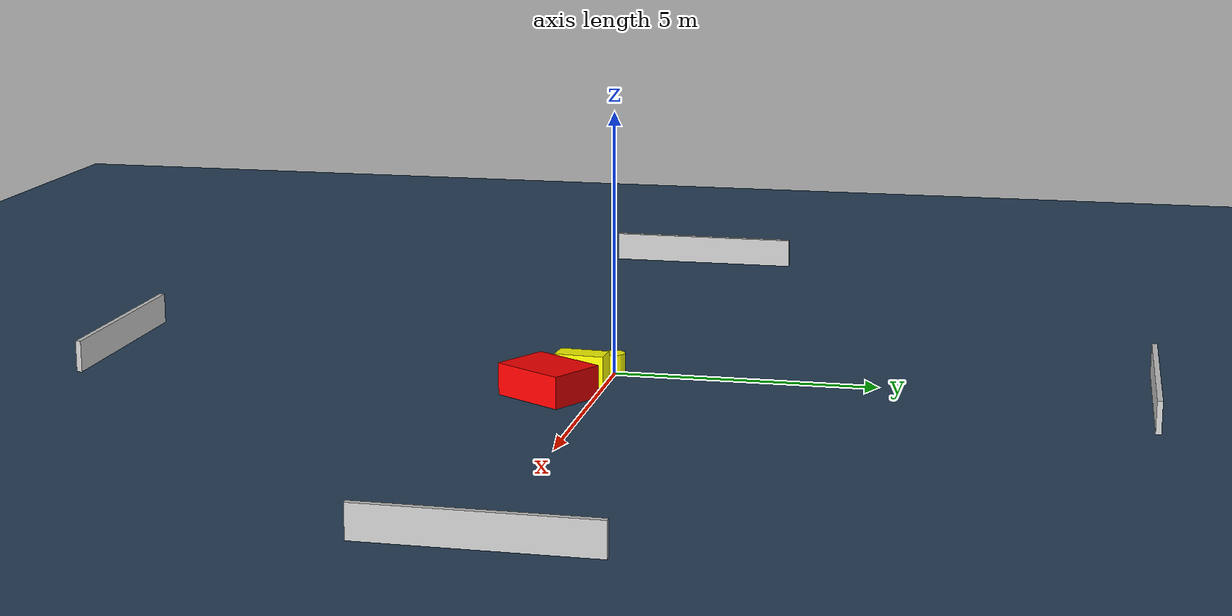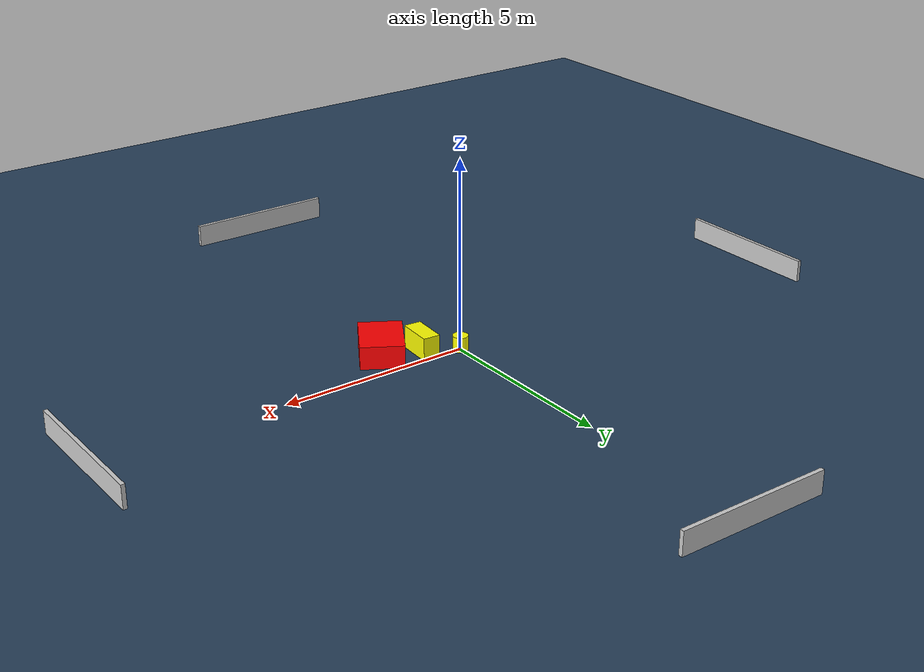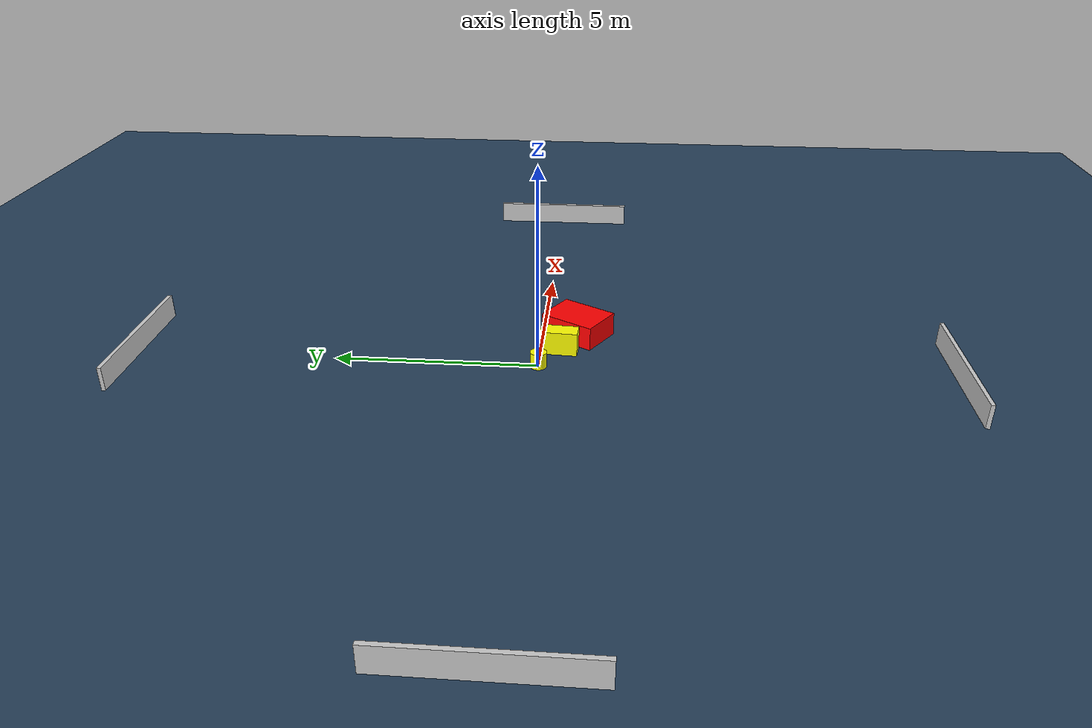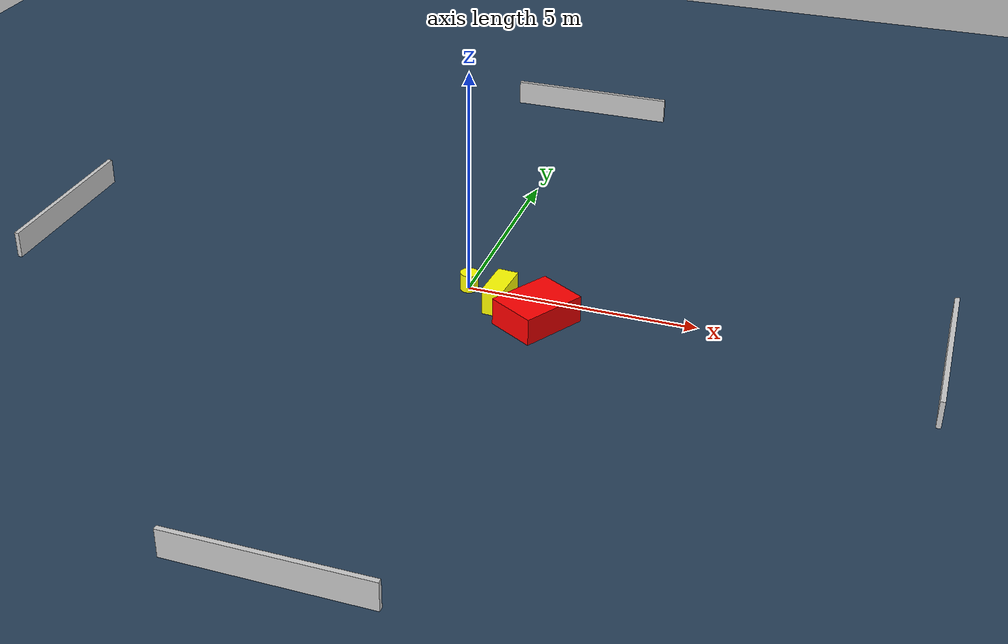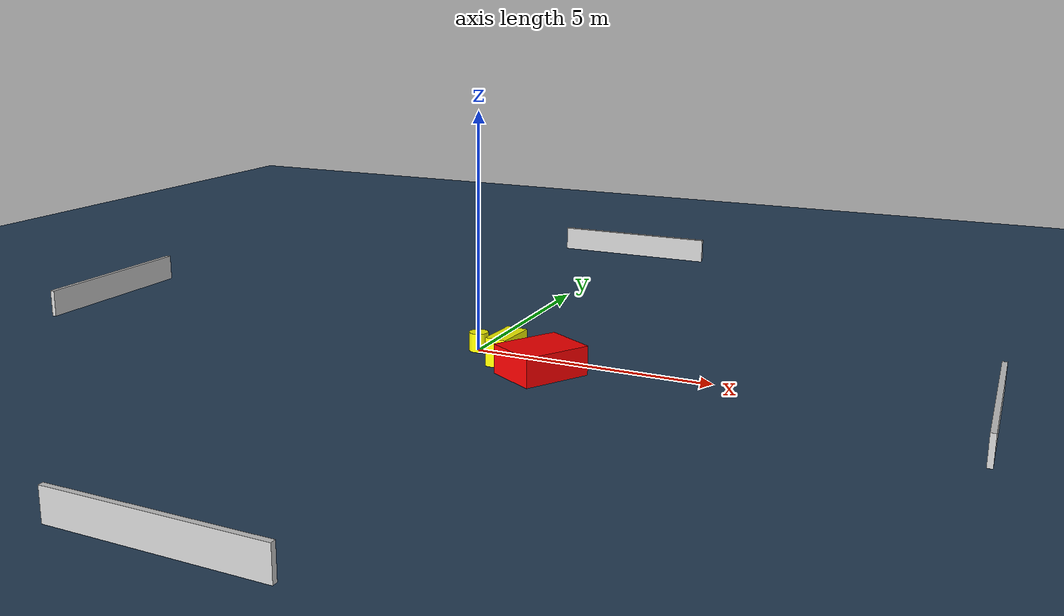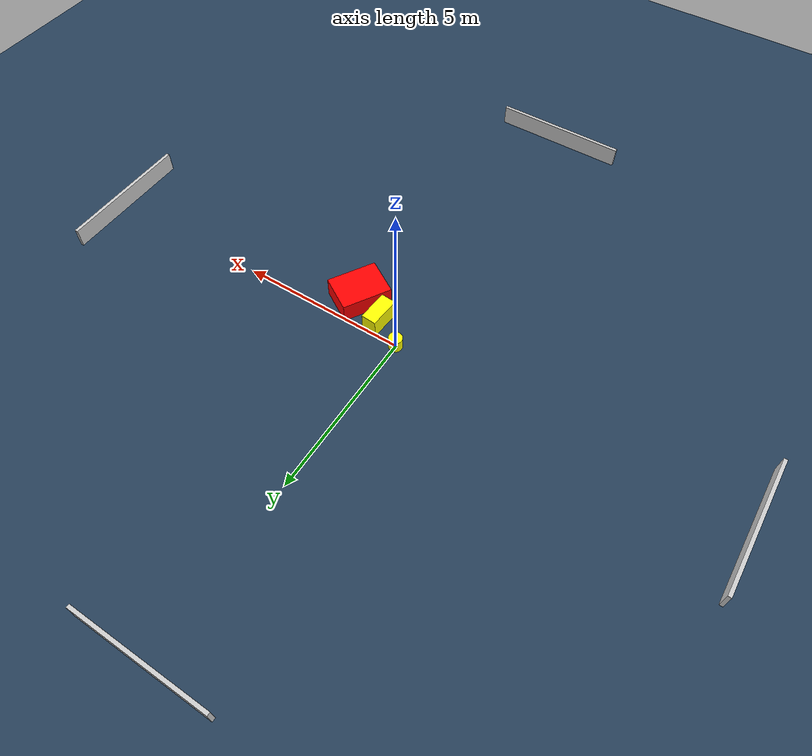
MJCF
<?xml version="1.0" ?>
<mujoco model="generated_environment">
  <option timestep="0.01" integrator="RK4" cone="elliptic"/>
  <default>
    <geom density="1"/>
  </default>
  <asset>
    <texture builtin="gradient" height="3072" name="skybox" rgb1="0.3 0.5 0.7" rgb2="0 0 0" type="skybox" width="512"/>
    <texture builtin="checker" height="300" name="groundplane" rgb1="0.2 0.3 0.4" rgb2="0.1 0.2 0.3" type="2d" width="300"/>
    <material name="groundplane" reflectance="0.2" texrepeat="5 5" texture="groundplane"/>
  </asset>
  <worldbody>
    <light dir="0 0 -1" directional="true" pos="0 0 1.5"/>
    <geom condim="3" friction="0.5 0.005 0.001" material="groundplane" name="floor" pos="0 0 0" size="0 0 0.05" type="plane"/>
    <body name="walls">
      <geom name="wall_1" condim="4" pos="-10.0 0.0 0.3" rgba="0.800000011920929 0.800000011920929 0.800000011920929 1.0" size="0.05 2.0 0.3" type="box"/>
      <geom name="wall_2" condim="4" pos="10.0 0.0 0.3" rgba="0.800000011920929 0.800000011920929 0.800000011920929 1.0" size="0.05 2.0 0.3" type="box"/>
      <geom name="wall_3" condim="4" pos="0.0 -10.0 0.3" rgba="0.800000011920929 0.800000011920929 0.800000011920929 1.0" size="2.0 0.05 0.3" type="box"/>
      <geom name="wall_4" condim="4" pos="0.0 10.0 0.3" rgba="0.800000011920929 0.800000011920929 0.800000011920929 1.0" size="2.0 0.05 0.3" type="box"/>
    </body>
    <body name="robot">
      <joint name="joint_x" type="slide" pos="0 0 0" axis="1 0 0"/>
      <joint name="joint_y" type="slide" pos="0 0 0" axis="0 1 0"/>
      <geom name="robot" type="cylinder" pos="0.0 0.0 0.2" size="0.2 0.2 0.0" mass="5.0" friction="1.0 0.005 0.0001" condim="4" rgba="1.0 1.0 0.0 1.0"/>
    </body>
    <body name="obstacle_1_movable">
      <geom name="obstacle_1_movable" condim="4" pos="0.8469543851465153 -0.45065767084671915 0.3" euler="0 0 86.13761287927572" friction="0.0 0.005 0.001" rgba="1.0 1.0 0.0 1.0" size="0.4666026491329671 0.22530163517446833 0.3" type="box" mass="0.1"/>
      <joint type="free"/>
    </body>
    <body name="obstacle_2_static">
      <geom name="obstacle_2_static" condim="4" pos="1.7814565599562202 -0.8686205776451813 0.3" euler="0 0 58.99842133251785" friction="0.0 0.005 0.001" rgba="1.0 0.0 0.0 1.0" size="0.7352238074387234 0.5561747678207943 0.3" type="box"/>
    </body>
  </worldbody>
  <actuator>
    <motor name="actuator_x" joint="joint_x" gear="1" ctrlrange="-1 1"/>
    <motor name="actuator_y" joint="joint_y" gear="1" ctrlrange="-1 1"/>
  </actuator>
</mujoco>
